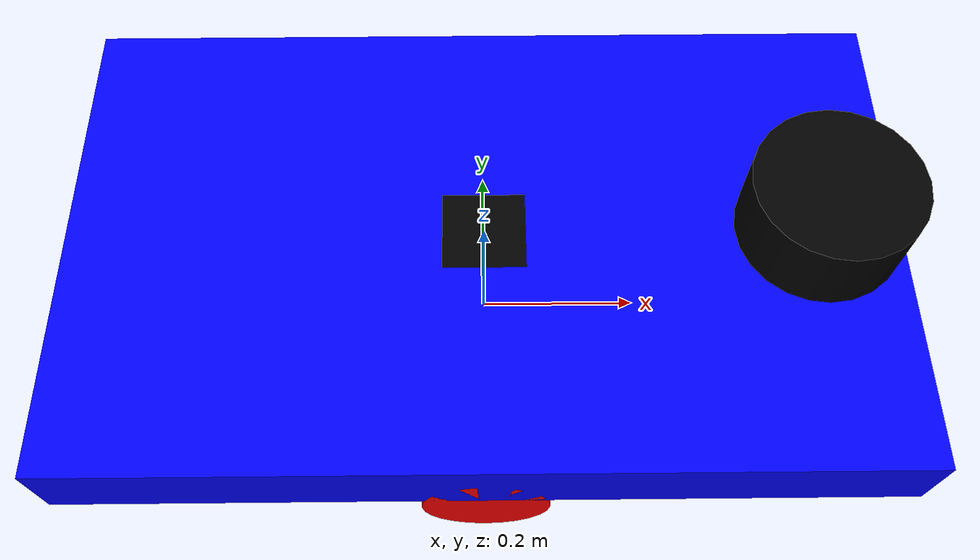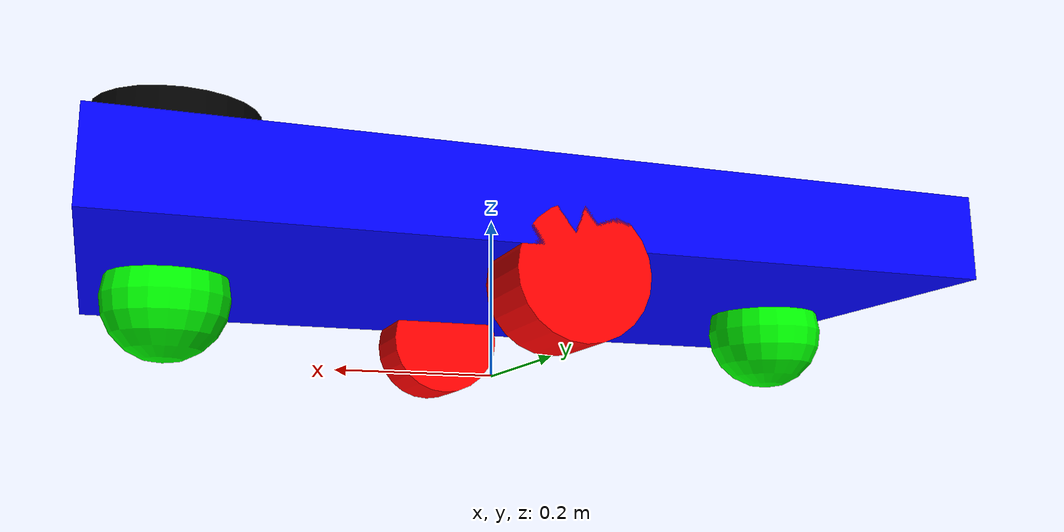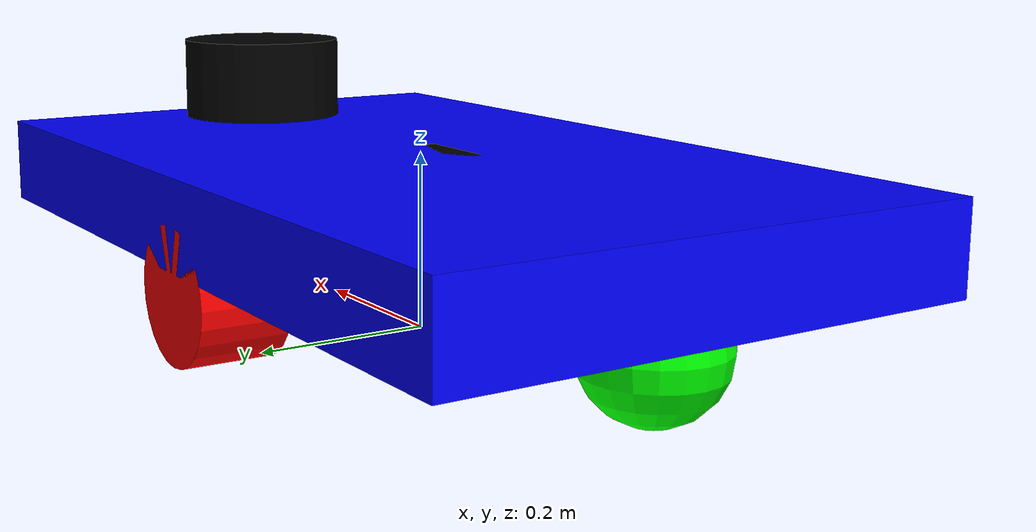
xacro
<?xml version="1.0"?>
<robot name="vehicle_blue" xmlns:xacro="http://ros.org/wiki/xacro">

  <!-- Define robot constants -->
  <xacro:property name="base_width" value="0.6" />
  <xacro:property name="base_length" value="1.0" />
  <xacro:property name="base_height" value="0.1" />

  <xacro:property name="wheel_radius" value="0.075" />
  <xacro:property name="wheel_width" value="0.1" />
  <xacro:property name="wheel_ygap" value="-0.05" /> <!-- Gap between chassis and wheel -->
  <xacro:property name="wheel_zoff" value="0.075" /> <!-- Wheel z offset -->
  <xacro:property name="wheel_xoff" value="0.0" /> <!-- Wheel x offset from center (rear) -->

  <xacro:property name="caster_xoff" value="0.4" /> <!-- Caster x offset (front) -->
  <xacro:property name="caster_radius" value="0.075" />

  <!-- Define intertial property macros  -->
  <xacro:macro name="box_inertia" params="m w h d">
    <inertial>
      <origin xyz="0 0 0" rpy="${pi/2} 0 ${pi/2}" />
      <mass value="${m}" />
      <inertia ixx="${(m/12) * (h*h + d*d)}" ixy="0.0" ixz="0.0" iyy="${(m/12) * (w*w + d*d)}"
        iyz="0.0" izz="${(m/12) * (w*w + h*h)}" />
    </inertial>
  </xacro:macro>

  <xacro:macro name="cylinder_inertia" params="m r h">
    <inertial>
      <origin xyz="0 0 0" rpy="${pi/2} 0 0" />
      <mass value="${m}" />
      <inertia ixx="${(m/12) * (3*r*r + h*h)}" ixy="0" ixz="0" iyy="${(m/12) * (3*r*r + h*h)}"
        iyz="0" izz="${(m/2) * (r*r)}" />
    </inertial>
  </xacro:macro>

  <xacro:macro name="sphere_inertia" params="m r">
    <inertial>
      <mass value="${m}" />
      <inertia ixx="${(2/5) * m * (r*r)}" ixy="0.0" ixz="0.0" iyy="${(2/5) * m * (r*r)}" iyz="0.0"
        izz="${(2/5) * m * (r*r)}" />
    </inertial>
  </xacro:macro>

  <!-- Robot Base -->
  <link name="base_footprint">
  </link>

  <joint name="base_joint" type="fixed">
    <parent link="base_footprint" />
    <child link="base_link" />
    <origin xyz="0.0 0.0 0.15" rpy="0 0 0" />
  </joint>

  <link name="base_link">
    <visual>
      <geometry>
        <box size="${base_length} ${base_width} ${base_height}" />
      </geometry>
      <material name="Blue">
        <color rgba="0 0 1.0 1.0" />
      </material>
    </visual>
    <collision>
      <geometry>
        <box size="${base_length} ${base_width} ${base_height}" />
      </geometry>
    </collision>
    <xacro:box_inertia m="30" w="${base_width}" d="${base_length}" h="${base_height}" />
  </link>

  <!-- Wheels -->
  <xacro:macro name="wheel" params="prefix x_reflect y_reflect">
    <link name="${prefix}_link">
      <visual>
        <origin xyz="0 0 0" rpy="${pi/2} 0 0" />
        <geometry>
          <cylinder radius="${wheel_radius}" length="${wheel_width}" />
        </geometry>
        <material name="Red">
          <color rgba="1.0 0 0 1.0" />
        </material>
      </visual>
      <collision>
        <origin xyz="0 0 0" rpy="${pi/2} 0 0" />
        <geometry>
          <cylinder radius="${wheel_radius}" length="${wheel_width}" />
        </geometry>
      </collision>
      <xacro:cylinder_inertia m="0.5" r="${wheel_radius}" h="${wheel_width}" />
    </link>

    <joint name="${prefix}_joint" type="continuous">
      <parent link="base_link" />
      <child link="${prefix}_link" />
      <origin xyz="${-wheel_xoff} ${y_reflect*(base_width/2 + wheel_ygap)} ${-wheel_zoff}"
        rpy="0 0 0" />
      <axis xyz="0 1 0" />
    </joint>
  </xacro:macro>

  <xacro:wheel prefix="left_wheel" x_reflect="-1" y_reflect="1" />
  <xacro:wheel prefix="right_wheel" x_reflect="-1" y_reflect="-1" />

  <!-- Front Caster Wheel -->
  <link name="front_caster">
    <visual>
      <geometry>
        <sphere radius="${caster_radius}" />
      </geometry>
      <material name="Green">
        <color rgba="0 1.0 0 1.0" />
      </material>
    </visual>
    <collision>
      <geometry>
        <sphere radius="${caster_radius}" />
      </geometry>
    </collision>
    <xacro:sphere_inertia m="0.5" r="${caster_radius}" />
  </link>

  <joint name="front_caster_joint" type="fixed">
    <parent link="base_link" />
    <child link="front_caster" />
    <origin xyz="${caster_xoff} 0.0 -0.075" rpy="0 0 0" />
  </joint>

  <!-- Rear Caster Wheel -->
  <link name="rear_caster">
    <visual>
      <geometry>
        <sphere radius="${caster_radius}" />
      </geometry>
      <material name="Green">
        <color rgba="0 1.0 0 1.0" />
      </material>
    </visual>
    <collision>
      <geometry>
        <sphere radius="${caster_radius}" />
      </geometry>
    </collision>
    <xacro:sphere_inertia m="0.5" r="${caster_radius}" />
  </link>

  <joint name="rear_caster_joint" type="fixed">
    <parent link="base_link" />
    <child link="rear_caster" />
    <origin xyz="${-caster_xoff} 0.0 -0.075" rpy="0 0 0" />
  </joint>

  <!-- IMU -->
  <link name="imu_link">
    <visual>
      <geometry>
        <box size="0.1 0.1 0.1" />
      </geometry>
      <material name="Black">
        <color rgba="0 0 0 1.0" />
      </material>
    </visual>
  </link>

  <joint name="imu_joint" type="fixed">
    <parent link="base_link" />
    <child link="imu_link" />
    <origin xyz="0 0 0" rpy="0 0 0" />
  </joint>

  <!-- LiDAR -->
  <link name="lidar_link">
    <visual>
      <geometry>
        <cylinder radius="0.1" length="0.1" />
      </geometry>
      <material name="Black">
        <color rgba="0 0 0 1.0" />
      </material>
    </visual>
  </link>

  <joint name="lidar_joint" type="fixed">
    <parent link="base_link" />
    <child link="lidar_link" />
    <origin xyz="0.4 0 0.1" rpy="0 0 0" />
  </joint>

</robot>
